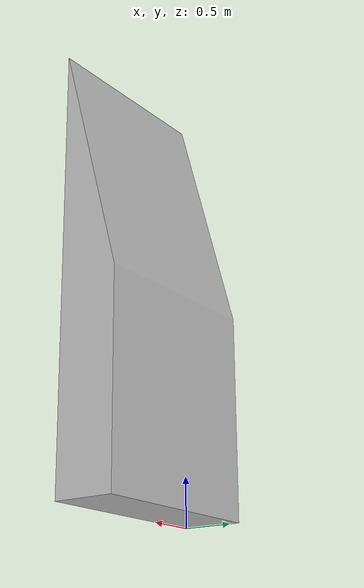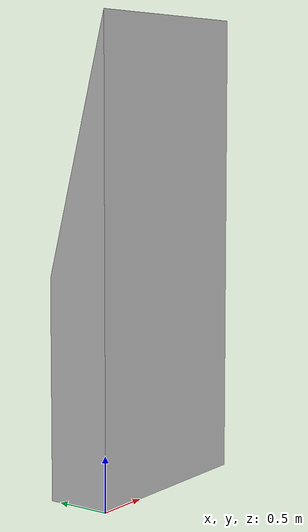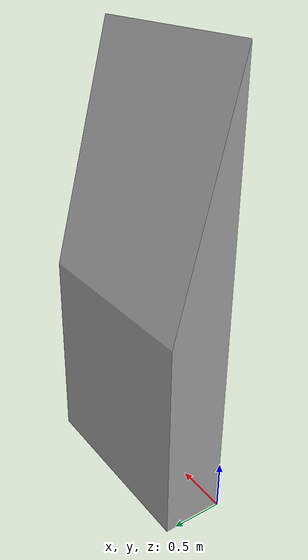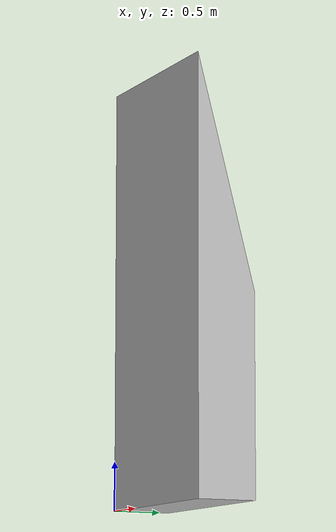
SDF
<?xml version="1.0" ?>
<sdf version="1.4">
  <model name="ramp_van">
    <static>true</static>
    <link name="link">
      <inertial>
        <mass>25</mass>
      </inertial>
      <collision name="collision">
        <geometry>
          <mesh>
            <uri>model://ramp_van/meshes/ramp_van.stl</uri>
          </mesh>
        </geometry>
      </collision>
      <visual name="visual">
        <transparency>0.0</transparency>
        <geometry>
          <mesh>
            <uri>model://ramp_van/meshes/ramp_van.stl</uri>
          </mesh>
        </geometry>
      </visual>
    </link>
  </model>
</sdf>
